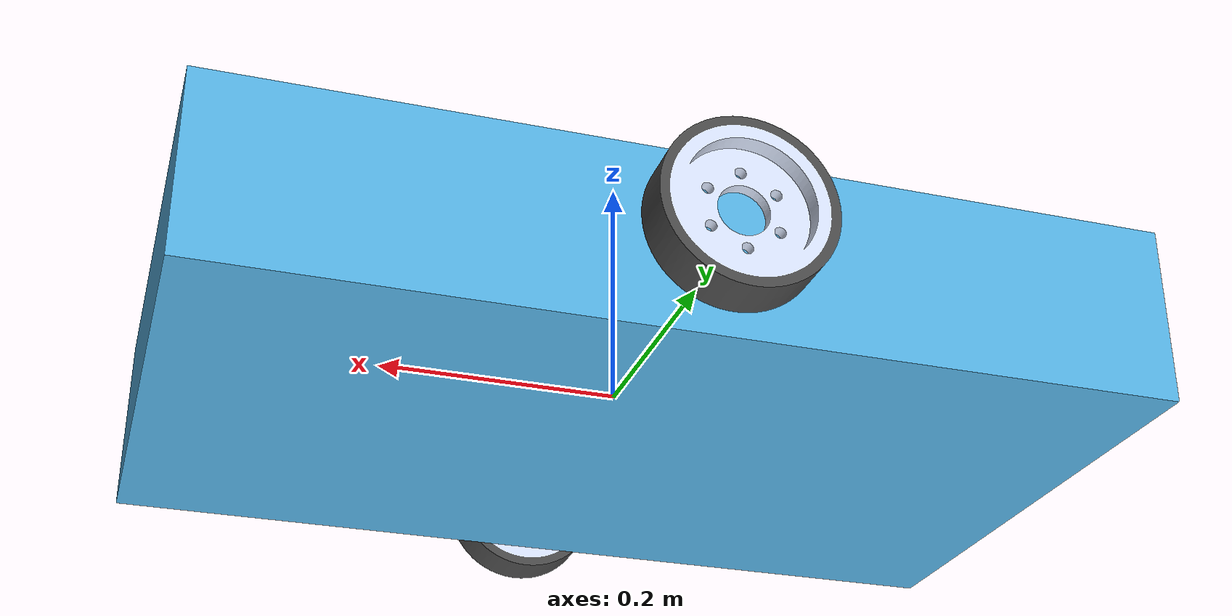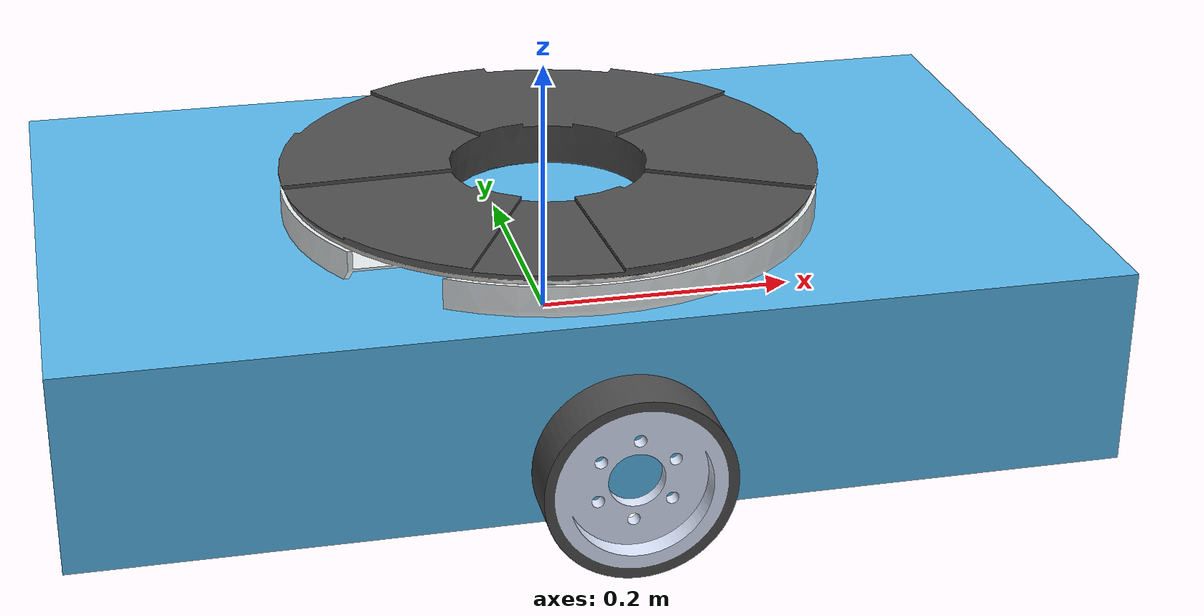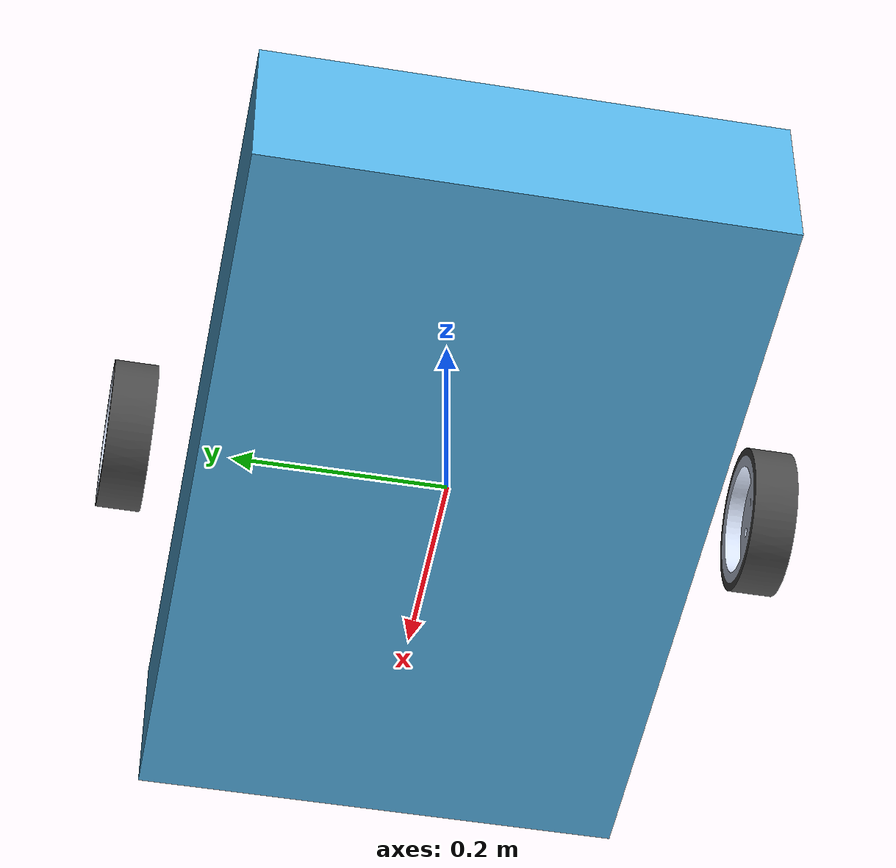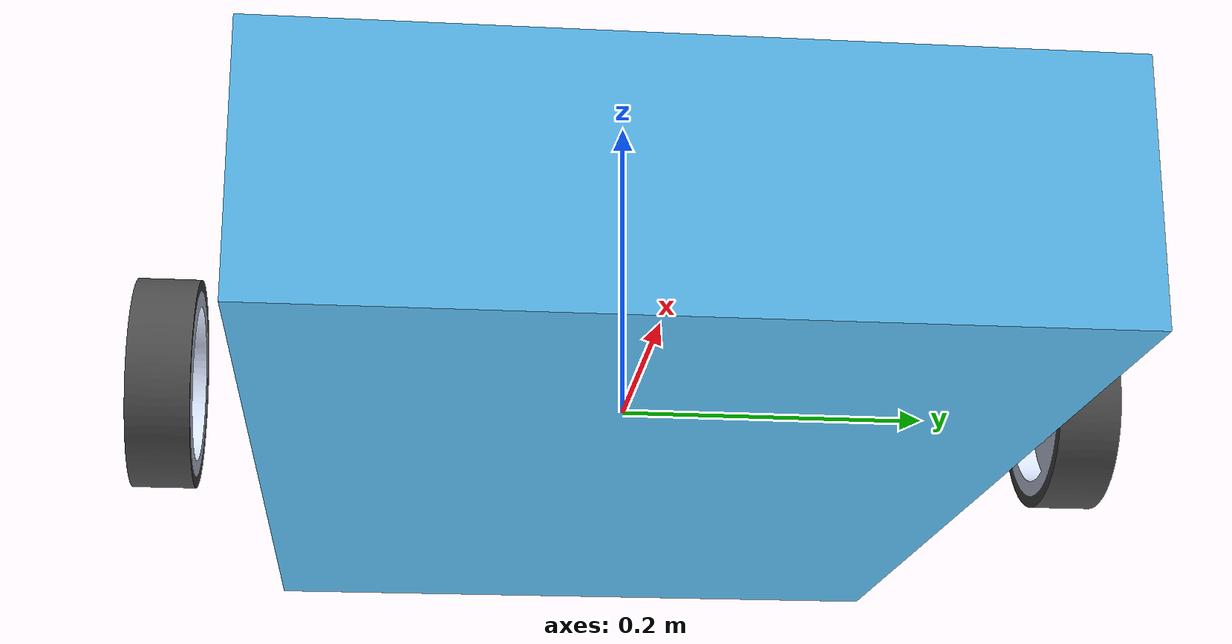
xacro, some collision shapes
<?xml version="1.0" ?>
<robot name="robozinho" xmlns:xacro="http://ros.org/wiki/xacro">

  <!-- ****************** ROBOT CONSTANTS *******************************  -->
  <!-- Define the size of the robot's main chassis in meters -->
  <xacro:property name="base_width" value="0.47"/>
  <xacro:property name="base_length" value="0.77"/>
  <xacro:property name="base_height" value="0.15"/>

  <!-- Define the shape of the robot's two wheels in meters -->
  <xacro:property name="wheel_radius" value="0.07"/>
  <xacro:property name="wheel_width" value="0.03"/>

  <!-- Define the shape of the robot's tray in meters -->
  <xacro:property name="tray_radius" value="0.2"/>
  <xacro:property name="tray_width" value="0.041"/>
  <!-- ********************** ROBOT BASE *********************************  -->
  <link name="base_link">
    </link>

    <joint name="base_joint" type="fixed">
      <parent link="base_link"/>
      <child link="chassis" />
      <origin xyz="0.0 0.0 0.0118" rpy="0 0 3.14"/>
    </joint>

    <link name="chassis">
      <visual>
        <origin xyz="0  0  0" rpy="0 0 0"/>
        <geometry>
          <mesh filename="file:///$(find rocket)/meshes/EST_estrutura_m3.dae" />
        </geometry>
      </visual>

      <collision>
          <origin rpy="0  0  0" xyz="0  0  0.01" />
          <geometry>
              <box size="${base_length} ${base_width} ${base_height}"/>
          </geometry>
      </collision>

      <inertial>
          <origin xyz="0  0  -0.0118" rpy="0  0  0"/>
          <mass value="2.4"/>
          <inertia ixx="0.019995" ixy="0.0" ixz="0.0"
                iyy="0.019995" iyz="0.0"
                izz="0.03675" />
      </inertial>

    </link>

  <!-- *********************** DRIVE WHEELS ******************************  -->

    <link name="left_wheel">
      <visual name="left_wheel_visual">
        <origin xyz="0 0 0" rpy="0 0 0"/>
        <geometry>
            <mesh filename="file:///$(find rocket)/meshes/M_rodatrativa.dae" scale="1 1 1"/>
        </geometry>
      </visual>

      <collision name="left_wheel_collision">
        <origin xyz="0 0 0" rpy="0 1.57 0"/>
        <geometry>
          <cylinder length="${wheel_width}" radius="${wheel_radius}"/>
        </geometry>
      </collision>

      <inertial>
        <mass value="1" />
        <origin rpy="0 1.57 0" xyz="0 0 0" />
        <inertia ixx="0.001" ixy="0.0" ixz="0.0"
                iyy="0.001" iyz="0.0"
                izz="0.001" />
      </inertial>

    </link>

    <joint name="joint_left_wheel" type="continuous">
            <parent link="chassis" />
            <child link="left_wheel" />
            <origin rpy="0 0 1.57" xyz=" 0 -0.296755 0" />
            <axis rpy="0 0 0" xyz="1 0 0"/>
    </joint>

    <link name="right_wheel">
      <visual name="right_wheel_visual">
        <origin xyz="0 0 0" rpy="0 0 0"/>
        <geometry>
            <mesh filename="file:///$(find rocket)/meshes/M_rodatrativa.dae" scale="1 1 1"/>
        </geometry>
      </visual>

      <collision name="right_wheel_collision">
        <origin xyz="0 0 0" rpy="0 1.57 0"/>
        <geometry>
          <cylinder length="${wheel_width}" radius="${wheel_radius}"/>
        </geometry>
      </collision>

      <inertial>
        <mass value="1" />
        <origin rpy="0 1.57 0" xyz="0 0 0" />
        <inertia ixx="0.001" ixy="0.0" ixz="0.0"
                iyy="0.001" iyz="0.0"
                izz="0.001" />
      </inertial>

    </link>

    <joint name="joint_right_wheel" type="continuous">
            <parent link="chassis" />
            <child link="right_wheel" />
            <origin rpy="0 0 1.57" xyz="0 0.296395 0" />
            <axis rpy="0 0 0" xyz="1 0 0"/>
    </joint>

  <!-- *********************** TRAY ******************************  -->

  <link name="tray">
      <visual name="tray_visual">
        <origin xyz="0 0 0.0118" rpy="0 0 0"/>
        <geometry>
            <mesh filename="file:///$(find rocket)/meshes/ELV_conjuntocompleto.dae" scale="1 1 1"/>
        </geometry>
      </visual>

      <collision name="tray_collision">
        <origin xyz="0 -0.015047 0.1" rpy="0 0 0"/>
        <geometry>
          <cylinder length="${tray_width}" radius="${tray_radius}"/>
        </geometry>
      </collision>

      <inertial>
        <mass value="0.5" />
        <origin rpy="0 0 0" xyz="0 -0.015047 0.1" />
        <inertia ixx="0.0" ixy="0.0" ixz="0.0"
                iyy="0.0" iyz="0.0"
                izz="0.0" />
      </inertial>
  </link>

  <joint name="joint_tray" type="fixed">
            <parent link="chassis" />
            <child link="tray" />
            <origin rpy="0 0 0" xyz="0 0.015047 0" />
    </joint>

  <gazebo>
    <plugin name="gazebo_ros_control" filename="libgazebo_ros_control.so">
      <robotNamespace>/</robotNamespace>
    </plugin>
  </gazebo>

</robot>
